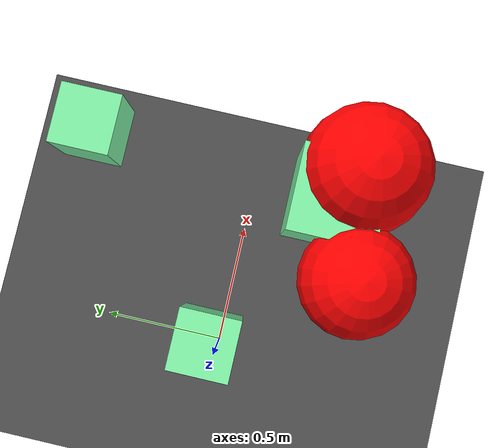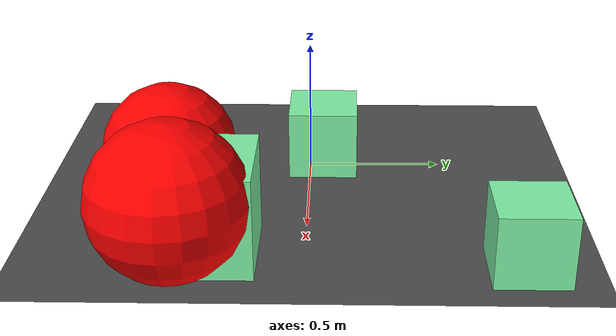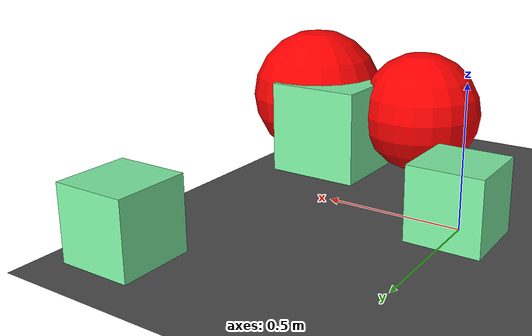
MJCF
<mujoco>
   <asset>
      <texture name="builtin_checker" builtin="checker" type="2d" rgb1="1 1 0" rgb2="0 0 1" width="200" height="200"/>
      <texture name="builtin_gradient" builtin="gradient" rgb1="0 .9 .3" rgb2="1 1 1" width="200" height="200"/>
      <texture name="builtin_flat" builtin="flat" rgb1="1 0 0" rgb2="1 0 0"  width="200" height="200"/>

      <material name="checker_mat" reflectance="0.9" texrepeat="3 3" texture="builtin_checker" texuniform="false" />
      <material name="gradient_mat" reflectance="1" texrepeat="1 1" texture="builtin_gradient" texuniform="true"/>
      <material name="flat_mat" reflectance="1" texrepeat="1 1" texture="builtin_flat" texuniform="true"/>
   </asset>

   <worldbody>
      <light diffuse=".9 .9 .9" pos="0 0 3" dir="0 0 -1"/>
     <geom type="plane" size="1 1 0.1" rgba="0.3 0.3 0.3 1"/>
<body pos="0.83 -0.43 0.27">
<joint type="free"/>
 <geom type="sphere" size="0.27 0.27 0.27" material="flat_mat" />
</body>
<body pos="0.69 -0.34 0.18">
<joint type="free"/>
 <geom type="box" size="0.18 0.18 0.18" material="gradient_mat" />
</body>
<body pos="0.38 -0.49 0.24">
<joint type="free"/>
 <geom type="sphere" size="0.24 0.24 0.24" material="flat_mat" />
</body>
<body pos="-0.01 0.05 0.13">
<joint type="free"/>
 <geom type="box" size="0.13 0.13 0.13" material="gradient_mat" />
</body>
<body pos="0.78 0.74 0.13">
<joint type="free"/>
 <geom type="box" size="0.13 0.13 0.13" material="gradient_mat" />
</body><camera euler="60 0 180" fovy="60" name="camera_a" pos="0 -1.5 1"></camera>   </worldbody>
</mujoco>
